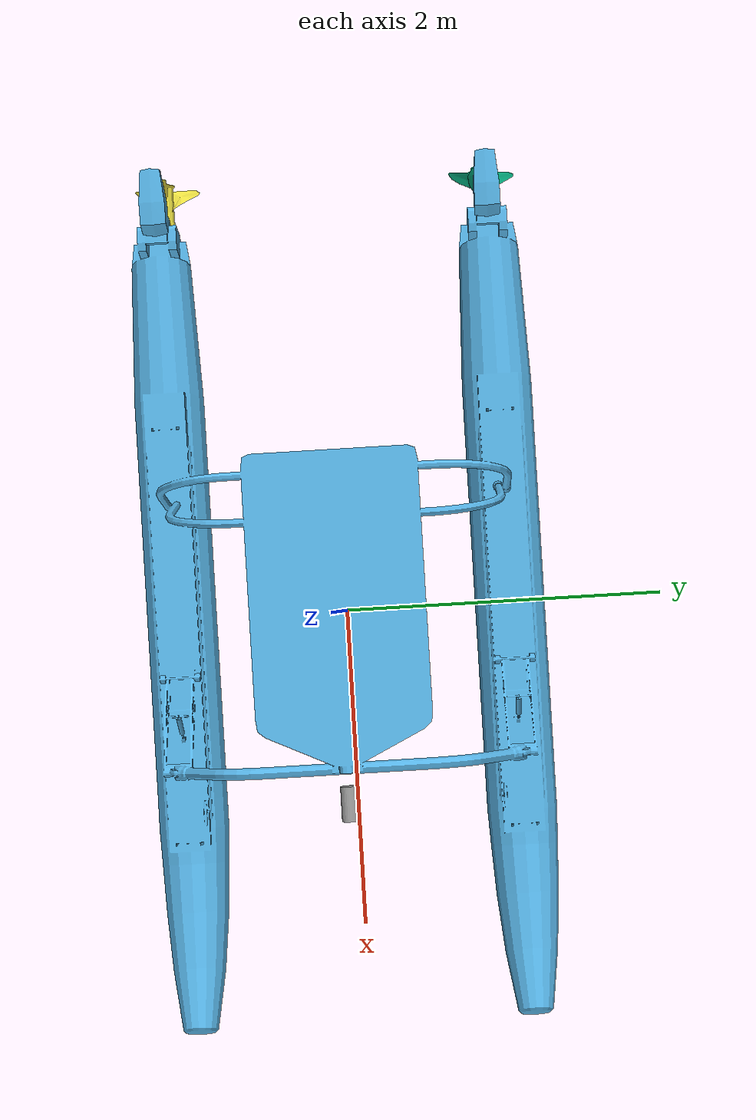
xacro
<?xml version="1.0"?>
<robot xmlns:xacro="http://ros.org/wiki/xacro" name="wam-v">
  <!-- Defines the base vehicle -->
  <xacro:include filename="$(find wamv_description)/urdf/base/base.urdf.xacro" />
  <xacro:include filename="$(find wamv_description)/urdf/thruster/thruster.urdf.xacro"/>
  <xacro:include filename="$(find wamv_description)/urdf/ball_launcher/ball_launcher.urdf.xacro" />
  <xacro:base_v0/>
  <xacro:thruster_v0 prefix="left" prefix_factor="1"/>
  <xacro:thruster_v0 prefix="right" prefix_factor="-1"/>
  <gazebo>
    <plugin name="gazebo_ros_control" filename="libgazebo_ros_control.so">
    </plugin>
  </gazebo>
  <xacro:ball_launcher_v0/>

  <!-- Attach hydrodynamics plugin -->
  <xacro:include filename="$(find robotx_gazebo)/urdf/wamv_gazebo_dynamics_plugin.xacro" />
  <xacro:usv_dynamics_gazebo name="wamv_dynamics_plugin"/>

  <!-- Attach wind plugin -->
  <xacro:include filename="$(find robotx_gazebo)/urdf/wamv_gazebo_wind_plugin.xacro" />
  <xacro:usv_wind_gazebo name="wamv_wind_plugin"/>

  <!-- Attach thrust plugin -->
  <xacro:include filename="$(find robotx_gazebo)/urdf/wamv_gazebo_thrust_plugin.xacro" />
  <xacro:usv_thrust_gazebo name="wamv_thrust_plugin"/>

  <!-- Attach Ball Launcher plugin -->
  <xacro:include filename="$(find robotx_gazebo)/urdf/wamv_gazebo_ball_launcher_plugin.xacro" />
  <xacro:ball_launcher_gazebo name="wamv_ball_launcher_plugin"/>
  <xacro:usv_thrust_gazebo name="wamv_thrust_plugin"/>

  <!-- Attach cog_publisher plugin -->
  <xacro:include filename="$(find robotx_gazebo)/urdf/gazebo_cog_publisher_plugin.xacro" />
  <xacro:cog_publisher_gazebo name="gazebo_cog_publisher"/>
</robot>

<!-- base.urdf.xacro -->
<robot xmlns:xacro="http://ros.org/wiki/xacro" name="wam-v">
  <xacro:include filename="$(find wamv_description)/urdf/data/properties.xacro"/>

  <xacro:macro name="base_v0">
    <!-- base_footprint -->
    <link name="base_footprint"/>
    <joint name="base_link_joint" type="fixed">
      <origin xyz="0 0 0"/>
      <parent link="base_footprint"/>
      <child link="base_link"/>
    </joint>
    <!-- base_link -->
    <link name="base_link">
      <wind>true</wind>
      <!-- Visual -->
      <visual>
        <geometry>
          <mesh filename="package://wamv_description/mesh/base/WAMV-BASE.dae"/>
        </geometry>
      </visual>
      <!-- Collision -->
      <collision name="top_base">
        <origin xyz="0 -0 1.25" rpy="0 0 0" />
        <geometry>
          <box size="1.85 1 0.1" />
        </geometry>
      </collision>
      <xacro:float_collision_v0 prefix="left" prefix_factor="1"/>
      <xacro:float_collision_v0 prefix="right" prefix_factor="-1"/>
      <xacro:beam_collision_v0 prefix="left" prefix_factor="1"/>
      <xacro:beam_collision_v0 prefix="right" prefix_factor="-1"/>
      <!-- Inertial -->
      <inertial>
        <!-- From von Ellenrieder, consistent with WAM-V specs-->
        <mass value="340.0"/>
        <inertia ixx="120.0" ixy="0.0" ixz="0.0" iyy="393" iyz="0.0" izz="446.0"/>
      </inertial>
    </link>
  </xacro:macro>

  <xacro:macro name="float_collision_v0" params="prefix prefix_factor">
    <!-- Float -->
    <collision name="${prefix}_float">
      <origin xyz="-0.4 ${prefix_factor*1.03} 0.2" rpy="0 1.57 0" />
      <geometry>
        <cylinder length="4" radius="0.2" />
      </geometry>
    </collision>
    <collision name="${prefix}_mid_float">
      <origin xyz="1.85 ${prefix_factor*1.03} 0.3" rpy="0 1.38 0" />
      <geometry>
        <cylinder length="0.5" radius="0.17" />
      </geometry>
    </collision>
    <collision name="${prefix}_front_float">
      <origin xyz="2.3 ${prefix_factor*1.03} 0.4" rpy="0 1.3 0" />
      <geometry>
        <cylinder length="0.45" radius="0.12" />
      </geometry>
    </collision>
    <!-- Engine Part -->
    <collision name="${prefix}_engine_vertical_axis">
      <origin xyz="-2.55 ${prefix_factor*1.03} 0.32"/>
      <geometry>
        <box size="0.2 0.15 0.37" />
      </geometry>
    </collision>
    <collision name="${prefix}_engine_rear_end">
      <origin xyz="-2.71 ${prefix_factor*1.03} 0.45"/>
      <geometry>
        <box size="0.12 0.15 0.12" />
      </geometry>
    </collision>
  </xacro:macro>

  <xacro:macro name="beam_collision_v0" params="prefix prefix_factor">
    <!-- Beam -->
    <!-- Front -->
    <collision name="front_${prefix}_beam_lower">
      <origin xyz="0.9 ${prefix_factor*0.85} 1" rpy="${prefix_factor*0.78} 0 0" />
      <geometry>
        <cylinder length="0.5" radius="0.04" />
      </geometry>
    </collision>
    <collision name="front_${prefix}_beam_upper">
      <origin xyz="0.9 ${prefix_factor*0.6} 1.18" rpy="${prefix_factor*1.35} 0 0" />
      <geometry>
        <cylinder length="0.2" radius="0.04" />
      </geometry>
    </collision>
    <!-- Middle -->
    <collision name="mid_${prefix}_beam_lower">
      <origin xyz="-0.65 ${prefix_factor*0.99} 0.7" rpy="${prefix_factor*0.1} 0.25 0" />
      <geometry>
        <cylinder length="0.45" radius="0.03" />
      </geometry>
    </collision>
    <collision name="mid_${prefix}_beam_medium">
      <origin xyz="-0.57 ${prefix_factor*0.87} 1.05" rpy="${prefix_factor*0.75} 0.25 0" />
      <geometry>
        <cylinder length="0.32" radius="0.03" />
      </geometry>
    </collision>
    <collision name="mid_${prefix}_beam_upper">
      <origin xyz="-0.55 ${prefix_factor*0.65} 1.17" rpy="${prefix_factor*1.35} 0.25 0" />
      <geometry>
        <cylinder length="0.3" radius="0.03" />
      </geometry>
    </collision>
    <!-- Rear -->
    <collision name="rear_${prefix}_beam_lower">
      <origin xyz="-0.74 ${prefix_factor*1.03} 0.7" rpy="0 -0.15 0" />
      <geometry>
        <cylinder length="0.45" radius="0.03" />
      </geometry>
    </collision>
    <collision name="rear_${prefix}_beam_medium">
      <origin xyz="-0.79 ${prefix_factor*0.91} 1.05" rpy="${prefix_factor*0.75} -0.15 0" />
      <geometry>
        <cylinder length="0.32" radius="0.03" />
      </geometry>
    </collision>
    <collision name="rear_${prefix}_beam_upper">
      <origin xyz="-0.81 ${prefix_factor*0.67} 1.18" rpy="${prefix_factor*1.45} -0.15 0" />
      <geometry>
        <cylinder length="0.3" radius="0.03" />
      </geometry>
    </collision>
    <!-- Joint -->
    <collision name="${prefix}_joint">
      <origin xyz="0.58 ${prefix_factor*1.03} 0.6" rpy="0 -0.6 0" />
      <geometry>
        <box size="0.65 0.2 0.1" />
      </geometry>
    </collision>
  </xacro:macro>
</robot>

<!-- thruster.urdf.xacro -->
<robot xmlns:xacro="http://ros.org/wiki/xacro" name="wam-v">
  <xacro:include filename="$(find wamv_description)/urdf/data/common.xacro"/>
  <xacro:include filename="$(find wamv_description)/urdf/thruster/thruster.transmission.xacro"/>

  <xacro:macro name="thruster_v0" params="prefix prefix_factor">
    <link name="${prefix}_thruster_link">
      <!-- Visual -->
      <visual>
        <origin xyz="-2.5045 1.02714 -0.14563" rpy="0 0 ${pi}"/>
        <geometry>
          <mesh filename="package://wamv_description/mesh/base/WAMV-Thruster.dae"/>
        </geometry>
      </visual>
      <!-- Collision -->
      <collision name="${prefix}_thruster_vertical_axis">
        <origin xyz="0.045 ${prefix_factor*-0.003} -0.240"/>
        <geometry>
          <box size="0.2 0.15 0.46"/>
        </geometry>
      </collision>
      <collision name="${prefix}_thruster_propeller">
        <origin xyz="0.235 ${prefix_factor*-0.003} -0.345" rpy="0 ${pi/2} 0"/>
        <geometry>
          <cylinder length="0.18" radius="0.24"/>
        </geometry>
      </collision>
      <!-- Inertial -->
      <inertial name="${prefix}_thruster_vertical_axis">
        <origin xyz="0.045 ${prefix_factor*-0.003} -0.240"/>
        <xacro:box_inertial mass="2.5" height="0.2" width="0.15" depth="0.46"/>
      </inertial>
      <inertial name="${prefix}_thruster_propeller">
        <origin xyz="0.235 ${prefix_factor*-0.003} -0.345" rpy="0 ${pi/2} 0"/>
        <xacro:cylinder_inertial mass="0.5" length="0.18" radius="0.24"/>
      </inertial>
    </link>
    <joint name="${prefix}_thruster_joint" type="revolute">
      <origin xyz="-2.5045 ${prefix_factor*1.02714} 0.14563" rpy="0 0 ${pi}"/>"
      <parent link="base_link"/>
      <child link="${prefix}_thruster_link"/>
      <axis xyz="0 0 1"/>
      <dynamics damping="0.7" friction="0.7"/>
      <limit effort="10.0" lower="${-3*pi/4}" upper="${3*pi/4}" velocity="${pi/2}"/>
    </joint>

    <!-- Transmission -->
    <xacro:thruster_transmission_v0 prefix="${prefix}"/>
  </xacro:macro>

</robot>

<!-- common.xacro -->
<robot xmlns:xacro="http://ros.org/wiki/xacro">

  <xacro:macro name="cylinder_inertial" params="mass radius length">
	<mass value="${mass}"/>
	<inertia ixx="${((radius*radius)/4 + (length*length)/12)*mass}" ixy="0" ixz="0"
			 iyy="${((radius*radius)/4 + (length*length)/12)*mass}" iyz="0"
			 izz="${(mass*radius*radius)/2}" />
  </xacro:macro>

  <xacro:macro name="box_inertial" params="mass height width depth">
	<mass value="${mass}"/>
	<inertia ixx="${(mass*(width*width+depth*depth))/12}" ixy="0" ixz="0"
			 iyy="${(mass*(height*height+depth*depth))/12}" iyz="0"
			 izz="${(mass*(height*height+width*width))/12}" />
  </xacro:macro>
</robot>

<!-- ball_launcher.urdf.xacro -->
<robot xmlns:xacro="http://ros.org/wiki/xacro" name="wam-v">
  <xacro:include filename="$(find wamv_description)/urdf/ball_launcher/ball_launcher.gazebo.xacro"/>
  <xacro:include filename="$(find wamv_description)/urdf/ball_launcher/ball_launcher.transmission.xacro"/>

  <xacro:macro name="ball_launcher_v0">
    <link name="ball_launcher_base_link">
      <!-- Inertial -->
      <inertial name="ball_launcher_base">
        <origin xyz="0 0 0"/>
        <xacro:box_inertial mass="0.1" height="0.2" width="0.2" depth="0.2"/>
      </inertial>
    </link>

    <joint name="ball_launcher_base_joint" type="fixed">
      <origin xyz="1.1 0 1.2"/>
      <parent link="base_link"/>
      <child link="ball_launcher_base_link"/>
    </joint>

    <link name="ball_launcher_yaw_link">
      <!-- Inertial -->
      <inertial name="ball_launcher_base">
        <origin xyz="0 0 0"/>
        <xacro:box_inertial mass="0.1" height="0.2" width="0.2" depth="0.2"/>
      </inertial>
    </link>

    <joint name="ball_launcher_yaw_joint" type="revolute">
      <origin xyz="0 0 0" rpy="0 0 0"/>"
      <parent link="ball_launcher_base_link"/>
      <child link="ball_launcher_yaw_link"/>
      <axis xyz="0 0 1"/>
      <dynamics damping="0.7" friction="0.7"/>
      <limit effort="10.0" lower="${-3*pi/4}" upper="${3*pi/4}" velocity="${pi/2}"/>
    </joint>

    <link name="ball_launcher_pitch_link">
      <!-- Inertial -->
      <inertial name="ball_launcher_base">
        <origin xyz="0 0 0"/>
        <xacro:box_inertial mass="0.1" height="0.2" width="0.2" depth="0.2"/>
      </inertial>
      <!-- Visual -->
      <visual>
        <geometry>
          <cylinder length="0.2" radius="0.05"/>
        </geometry>
        <origin rpy="0 ${pi/2} 0" xyz="0 0 0"/>
        <material name="gray"/>
      </visual>
    </link>

    <joint name="ball_launcher_pitch_joint" type="revolute">
      <origin xyz="0 0 0" rpy="${-3*pi/2} 0 0"/>"
      <parent link="ball_launcher_yaw_link"/>
      <child link="ball_launcher_pitch_link"/>
      <axis xyz="0 0 1"/>
      <dynamics damping="0.7" friction="0.7"/>
      <limit effort="10.0" lower="${-3*pi/4}" upper="${3*pi/4}" velocity="${pi/2}"/>
    </joint>

    <!-- Transmission -->
    <xacro:ball_launcher_transmission_v0/>

    <!-- Gazebo -->
    <xacro:ball_launcher_gazebo_v0/>
  </xacro:macro>
</robot>
